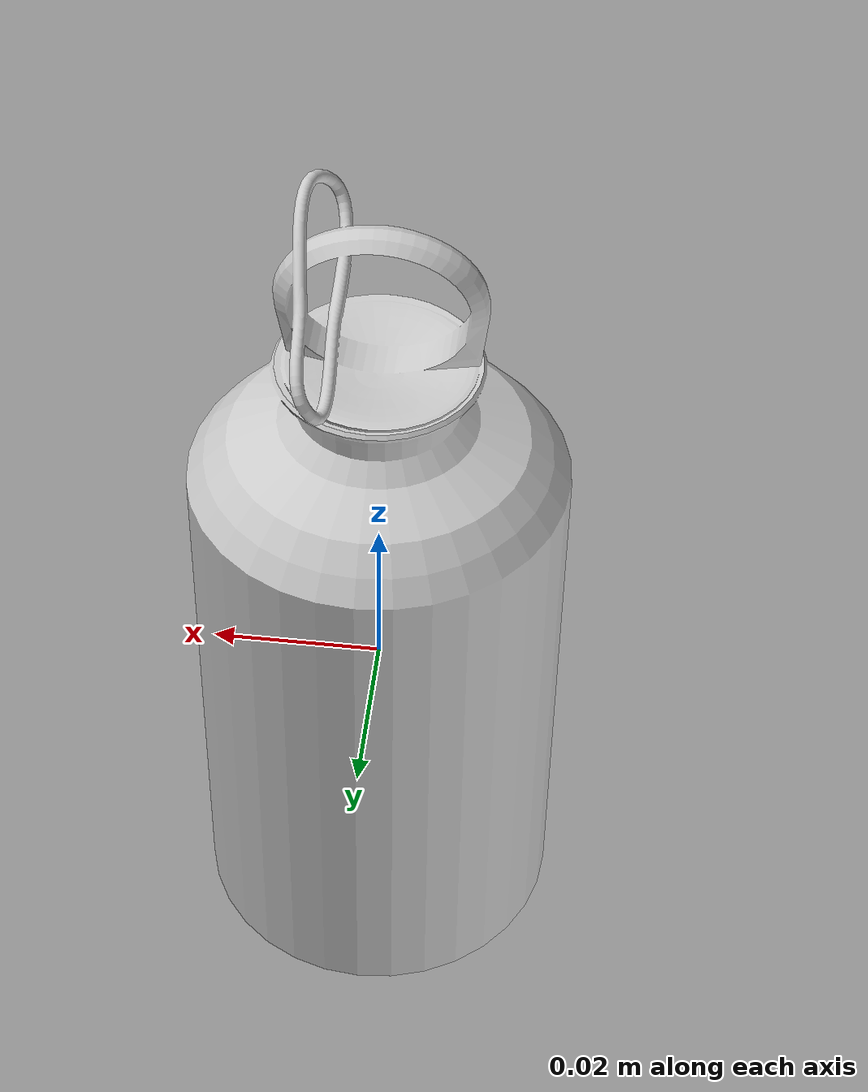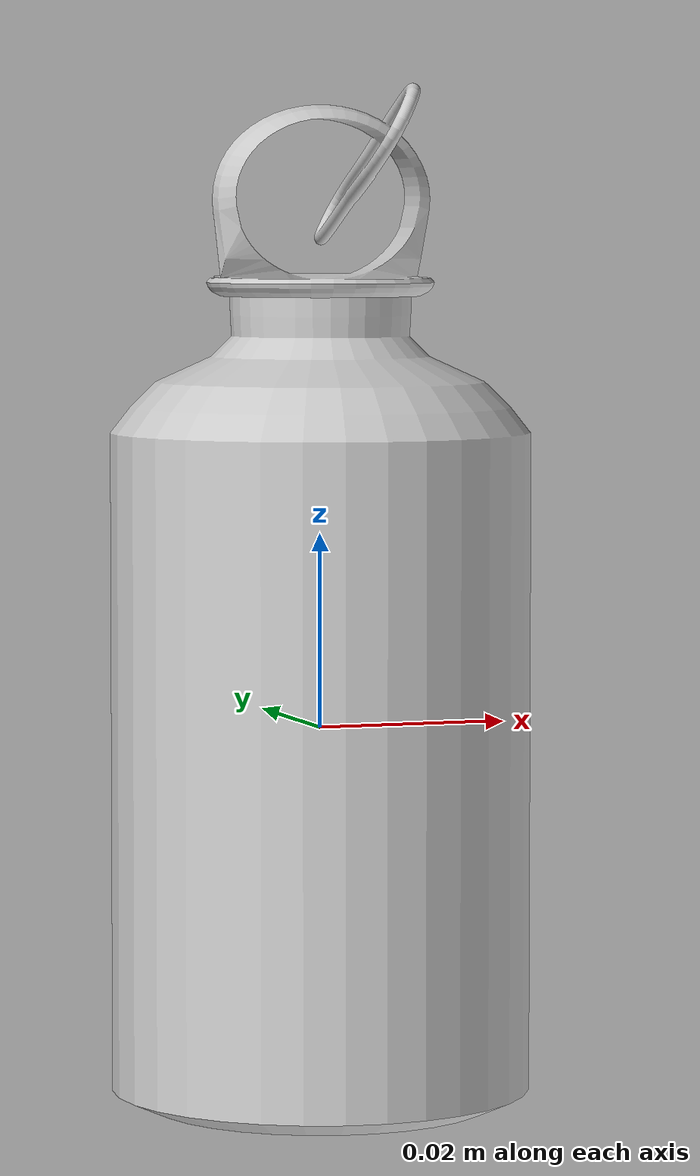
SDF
<?xml version="1.0" ?>
<sdf version="1.5">
  <model name="Bottle">
    <pose>0 0 0 0 0 0</pose>
    <static>true</static>
    <link name="body">
      <visual name="visual">
        <geometry>
          <mesh><uri>model://bottle/media/Bottle.dae</uri></mesh>
        </geometry>
      </visual>
      <collision name="collision">
        <geometry>
          <mesh><uri>model://bottle/media/Bottle.dae</uri></mesh>
        </geometry>
      </collision>
    </link>
  </model>
</sdf>
